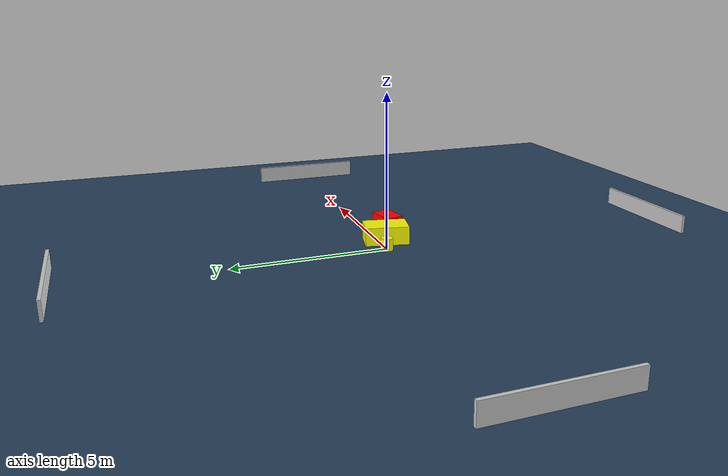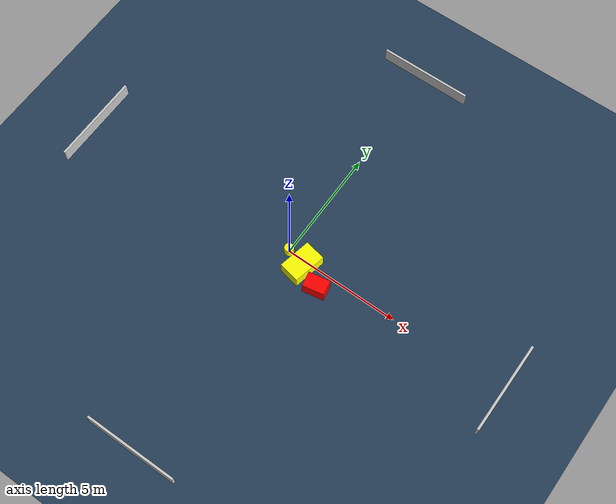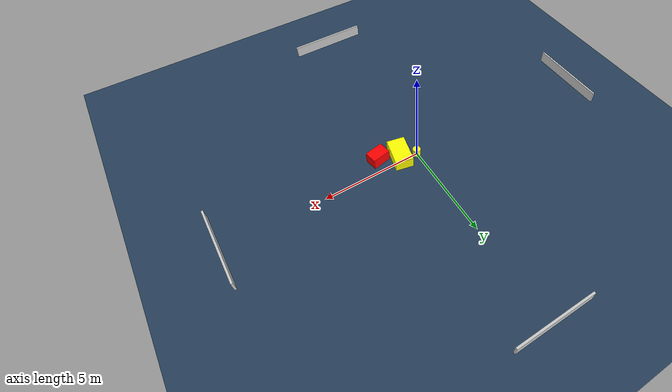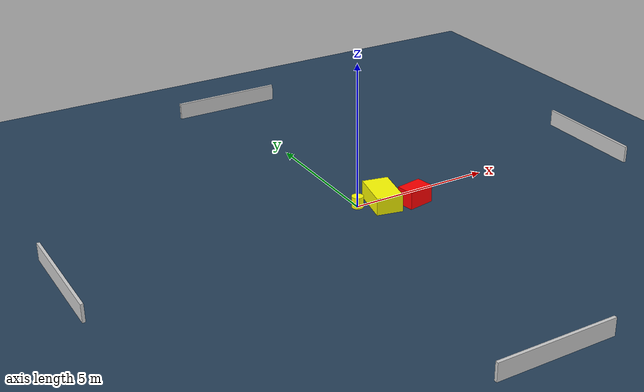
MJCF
<?xml version="1.0" ?>
<mujoco model="generated_environment">
  <option timestep="0.01" integrator="RK4" cone="elliptic"/>
  <default>
    <geom density="1"/>
  </default>
  <asset>
    <texture builtin="gradient" height="3072" name="skybox" rgb1="0.3 0.5 0.7" rgb2="0 0 0" type="skybox" width="512"/>
    <texture builtin="checker" height="300" name="groundplane" rgb1="0.2 0.3 0.4" rgb2="0.1 0.2 0.3" type="2d" width="300"/>
    <material name="groundplane" reflectance="0.2" texrepeat="5 5" texture="groundplane"/>
  </asset>
  <worldbody>
    <light dir="0 0 -1" directional="true" pos="0 0 1.5"/>
    <geom condim="3" friction="0.5 0.005 0.001" material="groundplane" name="floor" pos="0 0 0" size="0 0 0.05" type="plane"/>
    <body name="walls">
      <geom name="wall_1" condim="4" pos="-10.0 0.0 0.3" rgba="0.800000011920929 0.800000011920929 0.800000011920929 1.0" size="0.05 2.0 0.3" type="box"/>
      <geom name="wall_2" condim="4" pos="10.0 0.0 0.3" rgba="0.800000011920929 0.800000011920929 0.800000011920929 1.0" size="0.05 2.0 0.3" type="box"/>
      <geom name="wall_3" condim="4" pos="0.0 -10.0 0.3" rgba="0.800000011920929 0.800000011920929 0.800000011920929 1.0" size="2.0 0.05 0.3" type="box"/>
      <geom name="wall_4" condim="4" pos="0.0 10.0 0.3" rgba="0.800000011920929 0.800000011920929 0.800000011920929 1.0" size="2.0 0.05 0.3" type="box"/>
    </body>
    <body name="robot">
      <joint name="joint_x" type="slide" pos="0 0 0" axis="1 0 0"/>
      <joint name="joint_y" type="slide" pos="0 0 0" axis="0 1 0"/>
      <geom name="robot" type="cylinder" pos="0.0 0.0 0.2" size="0.2 0.2 0.0" mass="5.0" friction="1.0 0.005 0.0001" condim="4" rgba="1.0 1.0 0.0 1.0"/>
    </body>
    <body name="obstacle_1_movable">
      <geom name="obstacle_1_movable" condim="4" pos="0.8078711826115832 -0.2547913788874748 0.3" euler="0 0 258.1984322194478" friction="0.0 0.005 0.001" rgba="1.0 1.0 0.0 1.0" size="0.7155573564238742 0.45311043797112627 0.3" type="box" mass="0.1"/>
      <joint type="free"/>
    </body>
    <body name="obstacle_2_static">
      <geom name="obstacle_2_static" condim="4" pos="1.8046558499715688 -0.6991928061422013 0.3" euler="0 0 10.341057692790825" friction="0.0 0.005 0.001" rgba="1.0 0.0 0.0 1.0" size="0.46798347407648994 0.32197922910359567 0.3" type="box"/>
    </body>
  </worldbody>
  <actuator>
    <motor name="actuator_x" joint="joint_x" gear="1" ctrlrange="-1 1"/>
    <motor name="actuator_y" joint="joint_y" gear="1" ctrlrange="-1 1"/>
  </actuator>
</mujoco>
